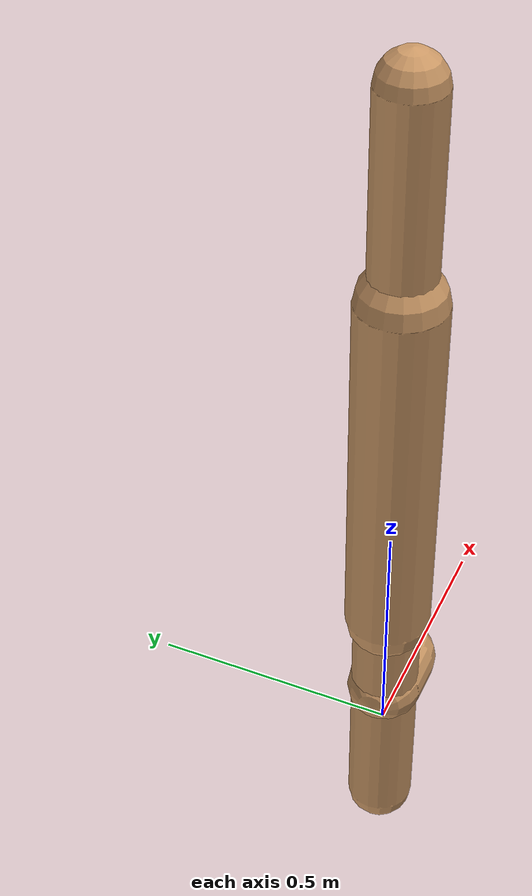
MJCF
<mujoco model="walker2d">
  <compiler angle="degree" coordinate="global" inertiafromgeom="true" />
  <default>
    <joint armature="0.01" damping=".1" limited="true" />
    <geom conaffinity="0" condim="3" contype="1" density="1000" friction="0.8 .1 .1" rgba="0.8 0.6 .4 1" />
  </default>
  <option integrator="RK4" timestep="0.002" />
  <worldbody>

    <body name="torso" pos="0 0 0.6265060835838037">
      <joint armature="0" axis="1 0 0" damping="0" limited="false" name="ignorex" pos="0 0 0" stiffness="0" type="slide" />
      <joint armature="0" axis="0 0 1" damping="0" limited="false" name="ignorez" pos="0 0 0" ref="1.25" stiffness="0" type="slide" />
      <joint armature="0" axis="0 1 0" damping="0" limited="false" name="ignorey" pos="0 0 0" stiffness="0" type="hinge" />
      <geom fromto="0 0 1.45 0 0 1.05" name="torso_geom" size="0.06193582612539508" type="capsule" />
      <body name="thigh">
        <joint axis="0 -1 0" name="thigh_joint" pos="0 0 1.05" range="-150 0" type="hinge" />
        <geom fromto="0.0 0.0 1.05 0.0 0.0 0.30323396040767187" name="thigh_geom" size="0.08470308280684326" type="capsule" />
        <body name="leg" pos="0.0 0.0 -0.2967660395923281">
          <joint axis="0 -1 0" name="leg_joint" pos="0 0 0.6" range="-150 0" type="hinge" />
          <geom fromto="0.0 0.0 0.6 0.0 0.0 -0.2297400439914756" name="leg_geom" size="0.0677624662454746" type="capsule" />
          <body name="foot" pos="0.0 0.0 -0.3297400439914756">
            <joint axis="0 -1 0" name="foot_joint" pos="0 0 0.1" range="-45 45" type="hinge" />
            <geom fromto="0.0 0.0 0.1 0.08480561220352337 0.0 0.1" name="foot_geom" size="0.07595075108120998" type="capsule" />
          </body>
        </body>
      </body>

      <body name="thigh_left">
        <joint axis="0 -1 0" name="thigh_left_joint" pos="0 0 1.05" range="-150 0" type="hinge" />
        <geom fromto="0.0 0.0 1.05 0.0 0.0 0.30323396040767187" name="thigh_left_geom" rgba=".7 .3 .6 1" size="0.08470308280684326" type="capsule" />
        <body name="leg_left" pos="0.0 0.0 -0.2967660395923281">
          <joint axis="0 -1 0" name="leg_left_joint" pos="0 0 0.6" range="-150 0" type="hinge" />
          <geom fromto="0.0 0.0 0.6 0.0 0.0 -0.2297400439914756" name="leg_left_geom" rgba=".7 .3 .6 1" size="0.0677624662454746" type="capsule" />
          <body name="foot_left" pos="0.0 0.0 -0.3297400439914756">
            <joint axis="0 -1 0" name="foot_left_joint" pos="0 0 0.1" range="-45 45" type="hinge" />
            <geom fromto="0.0 0.0 0.1 0.08480561220352337 0.0 0.1" name="foot_left_geom" rgba=".7 .3 .6 1" size="0.07595075108120998" type="capsule" />
          </body>
        </body>
      </body>
    </body>
  </worldbody>
  <actuator>

    <motor ctrllimited="true" ctrlrange="-1.0 1.0" gear="100" joint="thigh_joint" />
    <motor ctrllimited="true" ctrlrange="-1.0 1.0" gear="100" joint="leg_joint" />
    <motor ctrllimited="true" ctrlrange="-1.0 1.0" gear="100" joint="foot_joint" />
    <motor ctrllimited="true" ctrlrange="-1.0 1.0" gear="100" joint="thigh_left_joint" />
    <motor ctrllimited="true" ctrlrange="-1.0 1.0" gear="100" joint="leg_left_joint" />
    <motor ctrllimited="true" ctrlrange="-1.0 1.0" gear="100" joint="foot_left_joint" />

  </actuator>
</mujoco>
